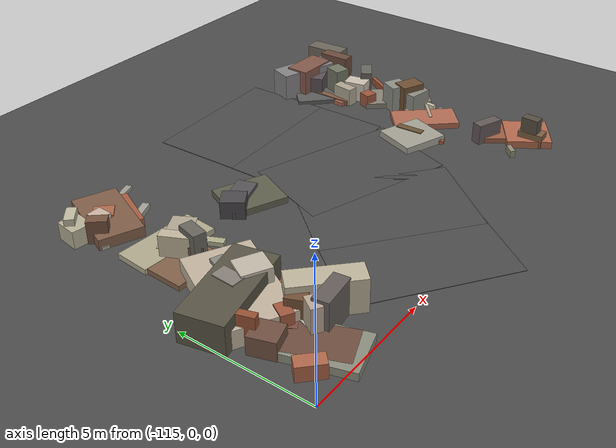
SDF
<sdf version="1.6">
 <world name="navitas_arena">
  <model name="ground_plane">
   <static>true</static>
   <link name="link">
    <collision name="collision">
     <geometry><plane><normal>0 0 1</normal><size>400 400</size></plane></geometry>
     <surface><friction><ode><mu>0.800</mu><mu2>0.800</mu2></ode></friction></surface>
    </collision>
    <visual name="visual">
     <cast_shadows>false</cast_shadows>
     <geometry><plane><normal>0 0 1</normal><size>400 400</size></plane></geometry>
     <material>
      <specular>0.04 0.04 0.04 1</specular>
      <script>
       <uri>file://media/materials/scripts/navitas_asphalt.material</uri>
       <name>Navitas/RealArenaAsphalt</name>
      </script>
     </material>
    </visual>
   </link>
  </model>
  <model name="road_kolay_1_11">
   <static>true</static>
   <pose>-107.723 1.333 0.040 0 0 0.941</pose>
   <link name="link">
    <collision name="col"><geometry><box><size>3.787 6.000 0.020</size></box></geometry></collision>
    <visual name="vis">
     <geometry><box><size>3.787 6.000 0.020</size></box></geometry>
     <material>
      <specular>0.04 0.04 0.04 1</specular>
      <script>
       <uri>file://media/materials/scripts/navitas_asphalt.material</uri>
       <name>Navitas/RealArenaAsphalt</name>
      </script>
     </material>
    </visual>
   </link>
  </model>
  <model name="road_kolay_1_12">
   <static>true</static>
   <pose>-105.942 3.667 0.040 0 0 0.897</pose>
   <link name="link">
    <collision name="col"><geometry><box><size>3.885 6.000 0.020</size></box></geometry></collision>
    <visual name="vis">
     <geometry><box><size>3.885 6.000 0.020</size></box></geometry>
     <material>
      <specular>0.04 0.04 0.04 1</specular>
      <script>
       <uri>file://media/materials/scripts/navitas_asphalt.material</uri>
       <name>Navitas/RealArenaAsphalt</name>
      </script>
     </material>
    </visual>
   </link>
  </model>
  <model name="road_kolay_1_13">
   <static>true</static>
   <pose>-104.572 6.137 0.040 0 0 1.245</pose>
   <link name="link">
    <collision name="col"><geometry><box><size>3.651 6.000 0.020</size></box></geometry></collision>
    <visual name="vis">
     <geometry><box><size>3.651 6.000 0.020</size></box></geometry>
     <material>
      <specular>0.04 0.04 0.04 1</specular>
      <script>
       <uri>file://media/materials/scripts/navitas_asphalt.material</uri>
       <name>Navitas/RealArenaAsphalt</name>
      </script>
     </material>
    </visual>
   </link>
  </model>
  <model name="road_kolay_1_14">
   <static>true</static>
   <pose>-104.165 8.910 0.040 0 0 1.593</pose>
   <link name="link">
    <collision name="col"><geometry><box><size>3.841 6.000 0.020</size></box></geometry></collision>
    <visual name="vis">
     <geometry><box><size>3.841 6.000 0.020</size></box></geometry>
     <material>
      <specular>0.04 0.04 0.04 1</specular>
      <script>
       <uri>file://media/materials/scripts/navitas_asphalt.material</uri>
       <name>Navitas/RealArenaAsphalt</name>
      </script>
     </material>
    </visual>
   </link>
  </model>
  <model name="road_kolay_1_15">
   <static>true</static>
   <pose>-104.246 11.690 0.040 0 0 1.609</pose>
   <link name="link">
    <collision name="col"><geometry><box><size>3.522 6.000 0.020</size></box></geometry></collision>
    <visual name="vis">
     <geometry><box><size>3.522 6.000 0.020</size></box></geometry>
     <material>
      <specular>0.04 0.04 0.04 1</specular>
      <script>
       <uri>file://media/materials/scripts/navitas_asphalt.material</uri>
       <name>Navitas/RealArenaAsphalt</name>
      </script>
     </material>
    </visual>
   </link>
  </model>
  <model name="deb_kolay_5">
   <static>true</static>
   <pose>-112.662 3.221 0.000 0 0 0</pose>
   <link name="link">
    <collision name="col_0">
     <pose>-0.434 0.750 0.152 0.000 0.000 2.490</pose>
     <geometry><box><size>2.248 1.536 0.305</size></box></geometry>
    </collision>
    <visual name="vis_0">
     <pose>-0.434 0.750 0.152 0.000 0.000 2.490</pose>
     <geometry><box><size>2.248 1.536 0.305</size></box></geometry>
     <material>
      <ambient>0.64 0.41 0.30 1</ambient>
      <diffuse>0.70 0.44 0.32 1</diffuse>
      <specular>0.05 0.05 0.045 1</specular>
     </material>
    </visual>
    <collision name="col_1">
     <pose>0.292 -0.635 0.513 0.000 0.000 0.399</pose>
     <geometry><box><size>1.027 0.677 1.025</size></box></geometry>
    </collision>
    <visual name="vis_1">
     <pose>0.292 -0.635 0.513 0.000 0.000 0.399</pose>
     <geometry><box><size>1.027 0.677 1.025</size></box></geometry>
     <material>
      <ambient>0.43 0.30 0.21 1</ambient>
      <diffuse>0.46 0.32 0.22 1</diffuse>
      <specular>0.05 0.05 0.045 1</specular>
     </material>
    </visual>
    <collision name="col_2">
     <pose>0.071 0.115 0.122 0.000 0.000 0.719</pose>
     <geometry><box><size>2.733 0.872 0.244</size></box></geometry>
    </collision>
    <visual name="vis_2">
     <pose>0.071 0.115 0.122 0.000 0.000 0.719</pose>
     <geometry><box><size>2.733 0.872 0.244</size></box></geometry>
     <material>
      <ambient>0.66 0.37 0.25 1</ambient>
      <diffuse>0.71 0.40 0.27 1</diffuse>
      <specular>0.05 0.05 0.045 1</specular>
     </material>
    </visual>
    <collision name="col_3">
     <pose>0.490 -0.647 0.160 0.000 0.000 1.245</pose>
     <geometry><box><size>1.934 0.988 0.321</size></box></geometry>
    </collision>
    <visual name="vis_3">
     <pose>0.490 -0.647 0.160 0.000 0.000 1.245</pose>
     <geometry><box><size>1.934 0.988 0.321</size></box></geometry>
     <material>
      <ambient>0.72 0.67 0.63 1</ambient>
      <diffuse>0.78 0.73 0.68 1</diffuse>
      <specular>0.05 0.05 0.045 1</specular>
     </material>
    </visual>
    <collision name="col_4">
     <pose>-0.360 -0.873 0.153 0.000 0.000 2.173</pose>
     <geometry><box><size>0.353 0.470 0.307</size></box></geometry>
    </collision>
    <visual name="vis_4">
     <pose>-0.360 -0.873 0.153 0.000 0.000 2.173</pose>
     <geometry><box><size>0.353 0.470 0.307</size></box></geometry>
     <material>
      <ambient>0.47 0.29 0.26 1</ambient>
      <diffuse>0.50 0.31 0.28 1</diffuse>
      <specular>0.05 0.05 0.045 1</specular>
     </material>
    </visual>
    <collision name="col_5">
     <pose>0.364 -0.889 0.141 0.000 0.000 -0.003</pose>
     <geometry><box><size>1.749 1.540 0.282</size></box></geometry>
    </collision>
    <visual name="vis_5">
     <pose>0.364 -0.889 0.141 0.000 0.000 -0.003</pose>
     <geometry><box><size>1.749 1.540 0.282</size></box></geometry>
     <material>
      <ambient>0.46 0.45 0.40 1</ambient>
      <diffuse>0.49 0.49 0.43 1</diffuse>
      <specular>0.05 0.05 0.045 1</specular>
     </material>
    </visual>
    <collision name="col_6">
     <pose>-0.389 -0.607 0.369 0.000 0.000 1.051</pose>
     <geometry><box><size>0.612 0.443 0.738</size></box></geometry>
    </collision>
    <visual name="vis_6">
     <pose>-0.389 -0.607 0.369 0.000 0.000 1.051</pose>
     <geometry><box><size>0.612 0.443 0.738</size></box></geometry>
     <material>
      <ambient>0.59 0.32 0.23 1</ambient>
      <diffuse>0.64 0.35 0.25 1</diffuse>
      <specular>0.05 0.05 0.045 1</specular>
     </material>
    </visual>
   </link>
  </model>
  <model name="deb_kolay_14">
   <static>true</static>
   <pose>-113.644 1.315 0.000 0 0 0</pose>
   <link name="link">
    <collision name="col_0">
     <pose>-0.486 -0.458 0.276 0.000 0.000 2.367</pose>
     <geometry><box><size>0.956 0.505 0.552</size></box></geometry>
    </collision>
    <visual name="vis_0">
     <pose>-0.486 -0.458 0.276 0.000 0.000 2.367</pose>
     <geometry><box><size>0.956 0.505 0.552</size></box></geometry>
     <material>
      <ambient>0.65 0.38 0.27 1</ambient>
      <diffuse>0.70 0.41 0.29 1</diffuse>
      <specular>0.05 0.05 0.045 1</specular>
     </material>
    </visual>
    <collision name="col_1">
     <pose>0.471 -0.086 0.148 0.000 0.000 1.864</pose>
     <geometry><box><size>2.839 1.710 0.295</size></box></geometry>
    </collision>
    <visual name="vis_1">
     <pose>0.471 -0.086 0.148 0.000 0.000 1.864</pose>
     <geometry><box><size>2.839 1.710 0.295</size></box></geometry>
     <material>
      <ambient>0.51 0.52 0.46 1</ambient>
      <diffuse>0.55 0.56 0.50 1</diffuse>
      <specular>0.05 0.05 0.045 1</specular>
     </material>
    </visual>
    <collision name="col_2">
     <pose>0.563 -0.191 0.083 0.000 0.000 2.445</pose>
     <geometry><box><size>0.268 0.272 0.167</size></box></geometry>
    </collision>
    <visual name="vis_2">
     <pose>0.563 -0.191 0.083 0.000 0.000 2.445</pose>
     <geometry><box><size>0.268 0.272 0.167</size></box></geometry>
     <material>
      <ambient>0.71 0.68 0.59 1</ambient>
      <diffuse>0.77 0.74 0.63 1</diffuse>
      <specular>0.05 0.05 0.045 1</specular>
     </material>
    </visual>
    <collision name="col_3">
     <pose>0.449 0.105 0.149 0.000 0.000 1.959</pose>
     <geometry><box><size>2.542 1.422 0.297</size></box></geometry>
    </collision>
    <visual name="vis_3">
     <pose>0.449 0.105 0.149 0.000 0.000 1.959</pose>
     <geometry><box><size>2.542 1.422 0.297</size></box></geometry>
     <material>
      <ambient>0.41 0.29 0.23 1</ambient>
      <diffuse>0.44 0.31 0.25 1</diffuse>
      <specular>0.05 0.05 0.045 1</specular>
     </material>
    </visual>
   </link>
  </model>
  <model name="deb_kolay_49">
   <static>true</static>
   <pose>-111.571 11.051 0.000 0 0 0</pose>
   <link name="link">
    <collision name="col_0">
     <pose>-0.028 -0.841 0.100 0.000 0.000 0.396</pose>
     <geometry><box><size>1.419 0.265 0.200</size></box></geometry>
    </collision>
    <visual name="vis_0">
     <pose>-0.028 -0.841 0.100 0.000 0.000 0.396</pose>
     <geometry><box><size>1.419 0.265 0.200</size></box></geometry>
     <material>
      <ambient>0.60 0.60 0.55 1</ambient>
      <diffuse>0.65 0.64 0.60 1</diffuse>
      <specular>0.05 0.05 0.045 1</specular>
     </material>
    </visual>
    <collision name="col_1">
     <pose>-0.834 -0.044 0.231 0.000 0.000 0.738</pose>
     <geometry><box><size>0.623 0.725 0.462</size></box></geometry>
    </collision>
    <visual name="vis_1">
     <pose>-0.834 -0.044 0.231 0.000 0.000 0.738</pose>
     <geometry><box><size>0.623 0.725 0.462</size></box></geometry>
     <material>
      <ambient>0.64 0.39 0.27 1</ambient>
      <diffuse>0.69 0.42 0.29 1</diffuse>
      <specular>0.05 0.05 0.045 1</specular>
     </material>
    </visual>
    <collision name="col_2">
     <pose>0.008 -0.478 0.174 0.000 0.000 1.141</pose>
     <geometry><box><size>1.837 0.311 0.349</size></box></geometry>
    </collision>
    <visual name="vis_2">
     <pose>0.008 -0.478 0.174 0.000 0.000 1.141</pose>
     <geometry><box><size>1.837 0.311 0.349</size></box></geometry>
     <material>
      <ambient>0.60 0.34 0.24 1</ambient>
      <diffuse>0.65 0.37 0.26 1</diffuse>
      <specular>0.05 0.05 0.045 1</specular>
     </material>
    </visual>
    <collision name="col_3">
     <pose>-0.809 -0.193 0.201 0.000 0.000 1.177</pose>
     <geometry><box><size>2.812 1.619 0.402</size></box></geometry>
    </collision>
    <visual name="vis_3">
     <pose>-0.809 -0.193 0.201 0.000 0.000 1.177</pose>
     <geometry><box><size>2.812 1.619 0.402</size></box></geometry>
     <material>
      <ambient>0.47 0.35 0.27 1</ambient>
      <diffuse>0.51 0.37 0.29 1</diffuse>
      <specular>0.05 0.05 0.045 1</specular>
     </material>
    </visual>
    <collision name="col_4">
     <pose>0.048 0.504 0.064 0.000 0.000 0.318</pose>
     <geometry><box><size>2.327 0.217 0.127</size></box></geometry>
    </collision>
    <visual name="vis_4">
     <pose>0.048 0.504 0.064 0.000 0.000 0.318</pose>
     <geometry><box><size>2.327 0.217 0.127</size></box></geometry>
     <material>
      <ambient>0.58 0.57 0.54 1</ambient>
      <diffuse>0.63 0.62 0.58 1</diffuse>
      <specular>0.05 0.05 0.045 1</specular>
     </material>
    </visual>
   </link>
  </model>
  <model name="deb_kolay_52">
   <static>true</static>
   <pose>-113.364 4.066 0.000 0 0 0</pose>
   <link name="link">
    <collision name="col_0">
     <pose>0.067 -0.331 0.076 0.000 0.000 2.278</pose>
     <geometry><box><size>1.626 0.211 0.151</size></box></geometry>
    </collision>
    <visual name="vis_0">
     <pose>0.067 -0.331 0.076 0.000 0.000 2.278</pose>
     <geometry><box><size>1.626 0.211 0.151</size></box></geometry>
     <material>
      <ambient>0.33 0.32 0.30 1</ambient>
      <diffuse>0.36 0.34 0.32 1</diffuse>
      <specular>0.05 0.05 0.045 1</specular>
     </material>
    </visual>
    <collision name="col_1">
     <pose>0.135 0.476 0.578 0.000 0.000 3.091</pose>
     <geometry><box><size>0.562 0.888 1.157</size></box></geometry>
    </collision>
    <visual name="vis_1">
     <pose>0.135 0.476 0.578 0.000 0.000 3.091</pose>
     <geometry><box><size>0.562 0.888 1.157</size></box></geometry>
     <material>
      <ambient>0.50 0.47 0.44 1</ambient>
      <diffuse>0.54 0.51 0.48 1</diffuse>
      <specular>0.05 0.05 0.045 1</specular>
     </material>
    </visual>
    <collision name="col_2">
     <pose>0.249 -0.367 0.148 0.000 0.000 1.614</pose>
     <geometry><box><size>0.475 0.465 0.296</size></box></geometry>
    </collision>
    <visual name="vis_2">
     <pose>0.249 -0.367 0.148 0.000 0.000 1.614</pose>
     <geometry><box><size>0.475 0.465 0.296</size></box></geometry>
     <material>
      <ambient>0.59 0.32 0.25 1</ambient>
      <diffuse>0.64 0.34 0.27 1</diffuse>
      <specular>0.05 0.05 0.045 1</specular>
     </material>
    </visual>
    <collision name="col_3">
     <pose>0.169 0.363 0.191 0.000 0.000 2.919</pose>
     <geometry><box><size>1.547 1.776 0.382</size></box></geometry>
    </collision>
    <visual name="vis_3">
     <pose>0.169 0.363 0.191 0.000 0.000 2.919</pose>
     <geometry><box><size>1.547 1.776 0.382</size></box></geometry>
     <material>
      <ambient>0.54 0.56 0.50 1</ambient>
      <diffuse>0.59 0.60 0.54 1</diffuse>
      <specular>0.05 0.05 0.045 1</specular>
     </material>
    </visual>
    <collision name="col_4">
     <pose>-0.338 0.218 0.191 0.000 0.000 1.287</pose>
     <geometry><box><size>2.024 1.095 0.382</size></box></geometry>
    </collision>
    <visual name="vis_4">
     <pose>-0.338 0.218 0.191 0.000 0.000 1.287</pose>
     <geometry><box><size>2.024 1.095 0.382</size></box></geometry>
     <material>
      <ambient>0.69 0.63 0.59 1</ambient>
      <diffuse>0.75 0.69 0.63 1</diffuse>
      <specular>0.05 0.05 0.045 1</specular>
     </material>
    </visual>
   </link>
  </model>
  <model name="deb_kolay_55">
   <static>true</static>
   <pose>-99.309 8.681 0.000 0 0 0</pose>
   <link name="link">
    <collision name="col_0">
     <pose>0.688 -0.802 0.111 0.000 0.000 -0.846</pose>
     <geometry><box><size>2.814 1.411 0.223</size></box></geometry>
    </collision>
    <visual name="vis_0">
     <pose>0.688 -0.802 0.111 0.000 0.000 -0.846</pose>
     <geometry><box><size>2.814 1.411 0.223</size></box></geometry>
     <material>
      <ambient>0.50 0.47 0.42 1</ambient>
      <diffuse>0.54 0.51 0.46 1</diffuse>
      <specular>0.05 0.05 0.045 1</specular>
     </material>
    </visual>
    <collision name="col_1">
     <pose>1.079 0.238 0.158 0.000 0.000 1.022</pose>
     <geometry><box><size>1.576 0.152 0.316</size></box></geometry>
    </collision>
    <visual name="vis_1">
     <pose>1.079 0.238 0.158 0.000 0.000 1.022</pose>
     <geometry><box><size>1.576 0.152 0.316</size></box></geometry>
     <material>
      <ambient>0.57 0.32 0.20 1</ambient>
      <diffuse>0.62 0.34 0.22 1</diffuse>
      <specular>0.05 0.05 0.045 1</specular>
     </material>
    </visual>
    <collision name="col_2">
     <pose>0.621 0.740 0.544 0.000 0.000 0.575</pose>
     <geometry><box><size>0.921 0.454 1.088</size></box></geometry>
    </collision>
    <visual name="vis_2">
     <pose>0.621 0.740 0.544 0.000 0.000 0.575</pose>
     <geometry><box><size>0.921 0.454 1.088</size></box></geometry>
     <material>
      <ambient>0.38 0.37 0.35 1</ambient>
      <diffuse>0.41 0.40 0.38 1</diffuse>
      <specular>0.05 0.05 0.045 1</specular>
     </material>
    </visual>
    <collision name="col_3">
     <pose>-0.425 -0.071 0.287 0.000 0.000 1.277</pose>
     <geometry><box><size>0.494 0.482 0.574</size></box></geometry>
    </collision>
    <visual name="vis_3">
     <pose>-0.425 -0.071 0.287 0.000 0.000 1.277</pose>
     <geometry><box><size>0.494 0.482 0.574</size></box></geometry>
     <material>
      <ambient>0.58 0.31 0.23 1</ambient>
      <diffuse>0.62 0.34 0.25 1</diffuse>
      <specular>0.05 0.05 0.045 1</specular>
     </material>
    </visual>
    <collision name="col_4">
     <pose>0.138 -1.102 0.545 0.000 0.000 1.126</pose>
     <geometry><box><size>0.762 0.796 1.091</size></box></geometry>
    </collision>
    <visual name="vis_4">
     <pose>0.138 -1.102 0.545 0.000 0.000 1.126</pose>
     <geometry><box><size>0.762 0.796 1.091</size></box></geometry>
     <material>
      <ambient>0.52 0.53 0.49 1</ambient>
      <diffuse>0.56 0.57 0.53 1</diffuse>
      <specular>0.05 0.05 0.045 1</specular>
     </material>
    </visual>
   </link>
  </model>
  <model name="deb_kolay_86">
   <static>true</static>
   <pose>-112.189 7.218 0.000 0 0 0</pose>
   <link name="link">
    <collision name="col_0">
     <pose>0.074 -0.337 0.341 0.000 0.000 2.089</pose>
     <geometry><box><size>0.490 0.563 0.683</size></box></geometry>
    </collision>
    <visual name="vis_0">
     <pose>0.074 -0.337 0.341 0.000 0.000 2.089</pose>
     <geometry><box><size>0.490 0.563 0.683</size></box></geometry>
     <material>
      <ambient>0.46 0.33 0.27 1</ambient>
      <diffuse>0.49 0.36 0.29 1</diffuse>
      <specular>0.05 0.05 0.045 1</specular>
     </material>
    </visual>
    <collision name="col_1">
     <pose>0.736 0.543 0.085 0.000 0.000 2.004</pose>
     <geometry><box><size>2.206 0.288 0.170</size></box></geometry>
    </collision>
    <visual name="vis_1">
     <pose>0.736 0.543 0.085 0.000 0.000 2.004</pose>
     <geometry><box><size>2.206 0.288 0.170</size></box></geometry>
     <material>
      <ambient>0.65 0.64 0.52 1</ambient>
      <diffuse>0.70 0.69 0.56 1</diffuse>
      <specular>0.05 0.05 0.045 1</specular>
     </material>
    </visual>
    <collision name="col_2">
     <pose>-0.414 -0.193 0.101 0.000 0.000 3.106</pose>
     <geometry><box><size>2.032 1.585 0.202</size></box></geometry>
    </collision>
    <visual name="vis_2">
     <pose>-0.414 -0.193 0.101 0.000 0.000 3.106</pose>
     <geometry><box><size>2.032 1.585 0.202</size></box></geometry>
     <material>
      <ambient>0.48 0.36 0.27 1</ambient>
      <diffuse>0.52 0.39 0.29 1</diffuse>
      <specular>0.05 0.05 0.045 1</specular>
     </material>
    </visual>
    <collision name="col_3">
     <pose>0.046 1.043 0.105 0.000 0.000 3.069</pose>
     <geometry><box><size>2.995 1.334 0.210</size></box></geometry>
    </collision>
    <visual name="vis_3">
     <pose>0.046 1.043 0.105 0.000 0.000 3.069</pose>
     <geometry><box><size>2.995 1.334 0.210</size></box></geometry>
     <material>
      <ambient>0.65 0.62 0.52 1</ambient>
      <diffuse>0.70 0.67 0.56 1</diffuse>
      <specular>0.05 0.05 0.045 1</specular>
     </material>
    </visual>
    <collision name="col_4">
     <pose>0.581 1.083 0.114 0.000 0.000 3.634</pose>
     <geometry><box><size>1.911 0.885 0.228</size></box></geometry>
    </collision>
    <visual name="vis_4">
     <pose>0.581 1.083 0.114 0.000 0.000 3.634</pose>
     <geometry><box><size>1.911 0.885 0.228</size></box></geometry>
     <material>
      <ambient>0.65 0.61 0.54 1</ambient>
      <diffuse>0.70 0.66 0.58 1</diffuse>
      <specular>0.05 0.05 0.045 1</specular>
     </material>
    </visual>
    <collision name="col_5">
     <pose>-0.280 0.215 0.507 0.000 0.000 2.025</pose>
     <geometry><box><size>1.139 0.409 1.014</size></box></geometry>
    </collision>
    <visual name="vis_5">
     <pose>-0.280 0.215 0.507 0.000 0.000 2.025</pose>
     <geometry><box><size>1.139 0.409 1.014</size></box></geometry>
     <material>
      <ambient>0.72 0.67 0.58 1</ambient>
      <diffuse>0.77 0.72 0.62 1</diffuse>
      <specular>0.05 0.05 0.045 1</specular>
     </material>
    </visual>
    <collision name="col_6">
     <pose>0.022 -0.221 0.617 0.000 0.000 2.895</pose>
     <geometry><box><size>0.483 0.863 1.234</size></box></geometry>
    </collision>
    <visual name="vis_6">
     <pose>0.022 -0.221 0.617 0.000 0.000 2.895</pose>
     <geometry><box><size>0.483 0.863 1.234</size></box></geometry>
     <material>
      <ambient>0.38 0.37 0.34 1</ambient>
      <diffuse>0.41 0.40 0.37 1</diffuse>
      <specular>0.05 0.05 0.045 1</specular>
     </material>
    </visual>
   </link>
  </model>
  <model name="deb_kolay_95">
   <static>true</static>
   <pose>-99.735 10.067 0.000 0 0 0</pose>
   <link name="link">
    <collision name="col_0">
     <pose>0.024 -0.201 0.078 0.000 0.000 2.313</pose>
     <geometry><box><size>0.293 0.402 0.156</size></box></geometry>
    </collision>
    <visual name="vis_0">
     <pose>0.024 -0.201 0.078 0.000 0.000 2.313</pose>
     <geometry><box><size>0.293 0.402 0.156</size></box></geometry>
     <material>
      <ambient>0.37 0.36 0.36 1</ambient>
      <diffuse>0.40 0.39 0.38 1</diffuse>
      <specular>0.05 0.05 0.045 1</specular>
     </material>
    </visual>
    <collision name="col_1">
     <pose>0.326 -0.653 0.411 0.000 0.000 3.345</pose>
     <geometry><box><size>0.659 0.898 0.821</size></box></geometry>
    </collision>
    <visual name="vis_1">
     <pose>0.326 -0.653 0.411 0.000 0.000 3.345</pose>
     <geometry><box><size>0.659 0.898 0.821</size></box></geometry>
     <material>
      <ambient>0.74 0.70 0.65 1</ambient>
      <diffuse>0.80 0.76 0.70 1</diffuse>
      <specular>0.05 0.05 0.045 1</specular>
     </material>
    </visual>
    <collision name="col_2">
     <pose>-0.494 0.103 0.108 0.000 0.000 1.588</pose>
     <geometry><box><size>1.750 0.289 0.216</size></box></geometry>
    </collision>
    <visual name="vis_2">
     <pose>-0.494 0.103 0.108 0.000 0.000 1.588</pose>
     <geometry><box><size>1.750 0.289 0.216</size></box></geometry>
     <material>
      <ambient>0.48 0.34 0.25 1</ambient>
      <diffuse>0.52 0.36 0.27 1</diffuse>
      <specular>0.05 0.05 0.045 1</specular>
     </material>
    </visual>
    <collision name="col_3">
     <pose>-0.481 0.453 0.090 0.000 0.000 2.355</pose>
     <geometry><box><size>2.487 1.194 0.179</size></box></geometry>
    </collision>
    <visual name="vis_3">
     <pose>-0.481 0.453 0.090 0.000 0.000 2.355</pose>
     <geometry><box><size>2.487 1.194 0.179</size></box></geometry>
     <material>
      <ambient>0.34 0.34 0.33 1</ambient>
      <diffuse>0.37 0.37 0.36 1</diffuse>
      <specular>0.05 0.05 0.045 1</specular>
     </material>
    </visual>
    <collision name="col_4">
     <pose>0.227 0.308 0.587 0.000 0.000 1.269</pose>
     <geometry><box><size>0.725 0.629 1.174</size></box></geometry>
    </collision>
    <visual name="vis_4">
     <pose>0.227 0.308 0.587 0.000 0.000 1.269</pose>
     <geometry><box><size>0.725 0.629 1.174</size></box></geometry>
     <material>
      <ambient>0.42 0.43 0.37 1</ambient>
      <diffuse>0.45 0.47 0.40 1</diffuse>
      <specular>0.05 0.05 0.045 1</specular>
     </material>
    </visual>
    <collision name="col_5">
     <pose>-0.555 -0.448 0.085 0.000 0.000 1.543</pose>
     <geometry><box><size>0.425 0.446 0.170</size></box></geometry>
    </collision>
    <visual name="vis_5">
     <pose>-0.555 -0.448 0.085 0.000 0.000 1.543</pose>
     <geometry><box><size>0.425 0.446 0.170</size></box></geometry>
     <material>
      <ambient>0.62 0.37 0.30 1</ambient>
      <diffuse>0.67 0.40 0.32 1</diffuse>
      <specular>0.05 0.05 0.045 1</specular>
     </material>
    </visual>
    <collision name="col_6">
     <pose>-0.268 -0.449 0.364 0.000 0.000 1.431</pose>
     <geometry><box><size>0.887 0.431 0.728</size></box></geometry>
    </collision>
    <visual name="vis_6">
     <pose>-0.268 -0.449 0.364 0.000 0.000 1.431</pose>
     <geometry><box><size>0.887 0.431 0.728</size></box></geometry>
     <material>
      <ambient>0.64 0.61 0.54 1</ambient>
      <diffuse>0.69 0.66 0.58 1</diffuse>
      <specular>0.05 0.05 0.045 1</specular>
     </material>
    </visual>
   </link>
  </model>
  <model name="deb_kolay_100">
   <static>true</static>
   <pose>-112.863 5.244 0.000 0 0 0</pose>
   <link name="link">
    <collision name="col_0">
     <pose>0.041 -0.319 0.409 0.000 0.000 3.211</pose>
     <geometry><box><size>0.705 0.421 0.818</size></box></geometry>
    </collision>
    <visual name="vis_0">
     <pose>0.041 -0.319 0.409 0.000 0.000 3.211</pose>
     <geometry><box><size>0.705 0.421 0.818</size></box></geometry>
     <material>
      <ambient>0.61 0.35 0.23 1</ambient>
      <diffuse>0.66 0.38 0.25 1</diffuse>
      <specular>0.05 0.05 0.045 1</specular>
     </material>
    </visual>
    <collision name="col_1">
     <pose>0.421 -0.407 0.364 0.000 0.000 3.268</pose>
     <geometry><box><size>0.660 0.861 0.728</size></box></geometry>
    </collision>
    <visual name="vis_1">
     <pose>0.421 -0.407 0.364 0.000 0.000 3.268</pose>
     <geometry><box><size>0.660 0.861 0.728</size></box></geometry>
     <material>
      <ambient>0.40 0.38 0.34 1</ambient>
      <diffuse>0.43 0.41 0.37 1</diffuse>
      <specular>0.05 0.05 0.045 1</specular>
     </material>
    </visual>
    <collision name="col_2">
     <pose>0.364 0.388 0.099 0.000 0.000 3.079</pose>
     <geometry><box><size>0.185 0.262 0.197</size></box></geometry>
    </collision>
    <visual name="vis_2">
     <pose>0.364 0.388 0.099 0.000 0.000 3.079</pose>
     <geometry><box><size>0.185 0.262 0.197</size></box></geometry>
     <material>
      <ambient>0.53 0.53 0.47 1</ambient>
      <diffuse>0.58 0.57 0.51 1</diffuse>
      <specular>0.05 0.05 0.045 1</specular>
     </material>
    </visual>
    <collision name="col_3">
     <pose>-0.430 -0.195 0.086 0.000 0.000 3.356</pose>
     <geometry><box><size>0.461 0.247 0.171</size></box></geometry>
    </collision>
    <visual name="vis_3">
     <pose>-0.430 -0.195 0.086 0.000 0.000 3.356</pose>
     <geometry><box><size>0.461 0.247 0.171</size></box></geometry>
     <material>
      <ambient>0.48 0.33 0.26 1</ambient>
      <diffuse>0.51 0.35 0.28 1</diffuse>
      <specular>0.05 0.05 0.045 1</specular>
     </material>
    </visual>
    <collision name="col_4">
     <pose>0.468 0.412 0.093 0.000 0.000 3.351</pose>
     <geometry><box><size>0.468 0.224 0.187</size></box></geometry>
    </collision>
    <visual name="vis_4">
     <pose>0.468 0.412 0.093 0.000 0.000 3.351</pose>
     <geometry><box><size>0.468 0.224 0.187</size></box></geometry>
     <material>
      <ambient>0.76 0.72 0.63 1</ambient>
      <diffuse>0.82 0.78 0.68 1</diffuse>
      <specular>0.05 0.05 0.045 1</specular>
     </material>
    </visual>
    <collision name="col_5">
     <pose>0.339 0.276 0.406 0.000 0.000 2.757</pose>
     <geometry><box><size>0.457 0.620 0.811</size></box></geometry>
    </collision>
    <visual name="vis_5">
     <pose>0.339 0.276 0.406 0.000 0.000 2.757</pose>
     <geometry><box><size>0.457 0.620 0.811</size></box></geometry>
     <material>
      <ambient>0.51 0.50 0.46 1</ambient>
      <diffuse>0.55 0.54 0.50 1</diffuse>
      <specular>0.05 0.05 0.045 1</specular>
     </material>
    </visual>
    <collision name="col_6">
     <pose>0.551 -0.020 0.167 0.000 0.000 1.374</pose>
     <geometry><box><size>0.335 0.308 0.335</size></box></geometry>
    </collision>
    <visual name="vis_6">
     <pose>0.551 -0.020 0.167 0.000 0.000 1.374</pose>
     <geometry><box><size>0.335 0.308 0.335</size></box></geometry>
     <material>
      <ambient>0.43 0.27 0.22 1</ambient>
      <diffuse>0.46 0.29 0.24 1</diffuse>
      <specular>0.05 0.05 0.045 1</specular>
     </material>
    </visual>
   </link>
  </model>
  <model name="deb_kolay_124">
   <static>true</static>
   <pose>-109.148 8.214 0.000 0 0 0</pose>
   <link name="link">
    <collision name="col_0">
     <pose>0.635 -0.075 0.204 0.000 0.000 0.329</pose>
     <geometry><box><size>1.115 0.764 0.408</size></box></geometry>
    </collision>
    <visual name="vis_0">
     <pose>0.635 -0.075 0.204 0.000 0.000 0.329</pose>
     <geometry><box><size>1.115 0.764 0.408</size></box></geometry>
     <material>
      <ambient>0.31 0.31 0.32 1</ambient>
      <diffuse>0.34 0.33 0.34 1</diffuse>
      <specular>0.05 0.05 0.045 1</specular>
     </material>
    </visual>
    <collision name="col_1">
     <pose>-0.240 -0.463 0.346 0.000 0.000 0.595</pose>
     <geometry><box><size>0.753 0.889 0.692</size></box></geometry>
    </collision>
    <visual name="vis_1">
     <pose>-0.240 -0.463 0.346 0.000 0.000 0.595</pose>
     <geometry><box><size>0.753 0.889 0.692</size></box></geometry>
     <material>
      <ambient>0.27 0.27 0.28 1</ambient>
      <diffuse>0.30 0.29 0.30 1</diffuse>
      <specular>0.05 0.05 0.045 1</specular>
     </material>
    </visual>
    <collision name="col_2">
     <pose>0.760 -0.320 0.127 0.000 0.000 -0.413</pose>
     <geometry><box><size>2.153 1.775 0.254</size></box></geometry>
    </collision>
    <visual name="vis_2">
     <pose>0.760 -0.320 0.127 0.000 0.000 -0.413</pose>
     <geometry><box><size>2.153 1.775 0.254</size></box></geometry>
     <material>
      <ambient>0.35 0.35 0.29 1</ambient>
      <diffuse>0.38 0.38 0.31 1</diffuse>
      <specular>0.05 0.05 0.045 1</specular>
     </material>
    </visual>
    <collision name="col_3">
     <pose>-0.113 -0.146 0.122 0.000 0.000 -0.170</pose>
     <geometry><box><size>0.370 0.366 0.244</size></box></geometry>
    </collision>
    <visual name="vis_3">
     <pose>-0.113 -0.146 0.122 0.000 0.000 -0.170</pose>
     <geometry><box><size>0.370 0.366 0.244</size></box></geometry>
     <material>
      <ambient>0.44 0.33 0.28 1</ambient>
      <diffuse>0.48 0.36 0.30 1</diffuse>
      <specular>0.05 0.05 0.045 1</specular>
     </material>
    </visual>
   </link>
  </model>
  <model name="deb_kolay_128">
   <static>true</static>
   <pose>-113.274 10.947 0.000 0 0 0</pose>
   <link name="link">
    <collision name="col_0">
     <pose>0.032 -0.631 0.439 0.000 0.000 2.292</pose>
     <geometry><box><size>0.719 0.403 0.878</size></box></geometry>
    </collision>
    <visual name="vis_0">
     <pose>0.032 -0.631 0.439 0.000 0.000 2.292</pose>
     <geometry><box><size>0.719 0.403 0.878</size></box></geometry>
     <material>
      <ambient>0.43 0.30 0.23 1</ambient>
      <diffuse>0.47 0.33 0.25 1</diffuse>
      <specular>0.05 0.05 0.045 1</specular>
     </material>
    </visual>
    <collision name="col_1">
     <pose>-0.332 0.246 0.463 0.000 0.000 0.727</pose>
     <geometry><box><size>0.757 0.353 0.926</size></box></geometry>
    </collision>
    <visual name="vis_1">
     <pose>-0.332 0.246 0.463 0.000 0.000 0.727</pose>
     <geometry><box><size>0.757 0.353 0.926</size></box></geometry>
     <material>
      <ambient>0.71 0.69 0.59 1</ambient>
      <diffuse>0.76 0.74 0.64 1</diffuse>
      <specular>0.05 0.05 0.045 1</specular>
     </material>
    </visual>
    <collision name="col_2">
     <pose>-0.381 0.005 0.336 0.000 0.000 1.435</pose>
     <geometry><box><size>0.865 0.769 0.672</size></box></geometry>
    </collision>
    <visual name="vis_2">
     <pose>-0.381 0.005 0.336 0.000 0.000 1.435</pose>
     <geometry><box><size>0.865 0.769 0.672</size></box></geometry>
     <material>
      <ambient>0.68 0.65 0.55 1</ambient>
      <diffuse>0.73 0.70 0.60 1</diffuse>
      <specular>0.05 0.05 0.045 1</specular>
     </material>
    </visual>
    <collision name="col_3">
     <pose>0.107 -0.084 0.060 0.000 0.000 1.303</pose>
     <geometry><box><size>2.291 0.281 0.121</size></box></geometry>
    </collision>
    <visual name="vis_3">
     <pose>0.107 -0.084 0.060 0.000 0.000 1.303</pose>
     <geometry><box><size>2.291 0.281 0.121</size></box></geometry>
     <material>
      <ambient>0.60 0.61 0.54 1</ambient>
      <diffuse>0.65 0.66 0.58 1</diffuse>
      <specular>0.05 0.05 0.045 1</specular>
     </material>
    </visual>
    <collision name="col_4">
     <pose>0.226 0.755 0.111 0.000 0.000 0.937</pose>
     <geometry><box><size>1.261 0.296 0.221</size></box></geometry>
    </collision>
    <visual name="vis_4">
     <pose>0.226 0.755 0.111 0.000 0.000 0.937</pose>
     <geometry><box><size>1.261 0.296 0.221</size></box></geometry>
     <material>
      <ambient>0.60 0.35 0.23 1</ambient>
      <diffuse>0.65 0.38 0.25 1</diffuse>
      <specular>0.05 0.05 0.045 1</specular>
     </material>
    </visual>
    <collision name="col_5">
     <pose>0.524 -0.123 0.299 0.000 0.000 1.542</pose>
     <geometry><box><size>0.581 0.542 0.599</size></box></geometry>
    </collision>
    <visual name="vis_5">
     <pose>0.524 -0.123 0.299 0.000 0.000 1.542</pose>
     <geometry><box><size>0.581 0.542 0.599</size></box></geometry>
     <material>
      <ambient>0.75 0.66 0.61 1</ambient>
      <diffuse>0.81 0.72 0.66 1</diffuse>
      <specular>0.05 0.05 0.045 1</specular>
     </material>
    </visual>
   </link>
  </model>
  <model name="deb_kolay_153">
   <static>true</static>
   <pose>-100.160 5.295 0.000 0 0 0</pose>
   <link name="link">
    <collision name="col_0">
     <pose>-1.088 0.190 0.157 0.000 0.000 2.798</pose>
     <geometry><box><size>1.887 1.739 0.313</size></box></geometry>
    </collision>
    <visual name="vis_0">
     <pose>-1.088 0.190 0.157 0.000 0.000 2.798</pose>
     <geometry><box><size>1.887 1.739 0.313</size></box></geometry>
     <material>
      <ambient>0.60 0.59 0.54 1</ambient>
      <diffuse>0.65 0.64 0.59 1</diffuse>
      <specular>0.05 0.05 0.045 1</specular>
     </material>
    </visual>
    <collision name="col_1">
     <pose>-0.588 -0.814 0.071 0.000 0.000 1.931</pose>
     <geometry><box><size>0.325 0.353 0.142</size></box></geometry>
    </collision>
    <visual name="vis_1">
     <pose>-0.588 -0.814 0.071 0.000 0.000 1.931</pose>
     <geometry><box><size>0.325 0.353 0.142</size></box></geometry>
     <material>
      <ambient>0.60 0.34 0.23 1</ambient>
      <diffuse>0.65 0.36 0.25 1</diffuse>
      <specular>0.05 0.05 0.045 1</specular>
     </material>
    </visual>
    <collision name="col_2">
     <pose>-0.668 -0.756 0.102 0.000 0.000 2.254</pose>
     <geometry><box><size>0.222 0.230 0.204</size></box></geometry>
    </collision>
    <visual name="vis_2">
     <pose>-0.668 -0.756 0.102 0.000 0.000 2.254</pose>
     <geometry><box><size>0.222 0.230 0.204</size></box></geometry>
     <material>
      <ambient>0.54 0.49 0.45 1</ambient>
      <diffuse>0.58 0.53 0.48 1</diffuse>
      <specular>0.05 0.05 0.045 1</specular>
     </material>
    </visual>
    <collision name="col_3">
     <pose>-0.856 0.427 0.176 0.000 0.000 1.624</pose>
     <geometry><box><size>1.106 0.296 0.352</size></box></geometry>
    </collision>
    <visual name="vis_3">
     <pose>-0.856 0.427 0.176 0.000 0.000 1.624</pose>
     <geometry><box><size>1.106 0.296 0.352</size></box></geometry>
     <material>
      <ambient>0.39 0.30 0.20 1</ambient>
      <diffuse>0.43 0.33 0.21 1</diffuse>
      <specular>0.05 0.05 0.045 1</specular>
     </material>
    </visual>
    <collision name="col_4">
     <pose>0.024 0.827 0.108 0.000 0.000 0.762</pose>
     <geometry><box><size>2.014 0.268 0.216</size></box></geometry>
    </collision>
    <visual name="vis_4">
     <pose>0.024 0.827 0.108 0.000 0.000 0.762</pose>
     <geometry><box><size>2.014 0.268 0.216</size></box></geometry>
     <material>
      <ambient>0.71 0.69 0.59 1</ambient>
      <diffuse>0.77 0.74 0.63 1</diffuse>
      <specular>0.05 0.05 0.045 1</specular>
     </material>
    </visual>
   </link>
  </model>
  <model name="deb_kolay_179">
   <static>true</static>
   <pose>-99.570 2.004 0.000 0 0 0</pose>
   <link name="link">
    <collision name="col_0">
     <pose>0.853 -0.417 0.564 0.000 0.000 1.527</pose>
     <geometry><box><size>0.677 0.399 1.129</size></box></geometry>
    </collision>
    <visual name="vis_0">
     <pose>0.853 -0.417 0.564 0.000 0.000 1.527</pose>
     <geometry><box><size>0.677 0.399 1.129</size></box></geometry>
     <material>
      <ambient>0.31 0.29 0.24 1</ambient>
      <diffuse>0.34 0.31 0.26 1</diffuse>
      <specular>0.05 0.05 0.045 1</specular>
     </material>
    </visual>
    <collision name="col_1">
     <pose>0.954 0.525 0.110 0.000 0.000 2.209</pose>
     <geometry><box><size>2.171 1.327 0.220</size></box></geometry>
    </collision>
    <visual name="vis_1">
     <pose>0.954 0.525 0.110 0.000 0.000 2.209</pose>
     <geometry><box><size>2.171 1.327 0.220</size></box></geometry>
     <material>
      <ambient>0.57 0.35 0.25 1</ambient>
      <diffuse>0.62 0.38 0.27 1</diffuse>
      <specular>0.05 0.05 0.045 1</specular>
     </material>
    </visual>
    <collision name="col_2">
     <pose>-0.411 -0.216 0.140 0.000 0.000 0.792</pose>
     <geometry><box><size>0.500 0.192 0.280</size></box></geometry>
    </collision>
    <visual name="vis_2">
     <pose>-0.411 -0.216 0.140 0.000 0.000 0.792</pose>
     <geometry><box><size>0.500 0.192 0.280</size></box></geometry>
     <material>
      <ambient>0.54 0.52 0.44 1</ambient>
      <diffuse>0.58 0.56 0.47 1</diffuse>
      <specular>0.05 0.05 0.045 1</specular>
     </material>
    </visual>
    <collision name="col_3">
     <pose>1.167 -0.130 0.146 0.000 0.000 2.151</pose>
     <geometry><box><size>1.741 1.730 0.292</size></box></geometry>
    </collision>
    <visual name="vis_3">
     <pose>1.167 -0.130 0.146 0.000 0.000 2.151</pose>
     <geometry><box><size>1.741 1.730 0.292</size></box></geometry>
     <material>
      <ambient>0.66 0.39 0.28 1</ambient>
      <diffuse>0.71 0.42 0.31 1</diffuse>
      <specular>0.05 0.05 0.045 1</specular>
     </material>
    </visual>
    <collision name="col_4">
     <pose>0.890 -0.483 0.270 0.000 0.000 1.619</pose>
     <geometry><box><size>0.981 0.548 0.540</size></box></geometry>
    </collision>
    <visual name="vis_4">
     <pose>0.890 -0.483 0.270 0.000 0.000 1.619</pose>
     <geometry><box><size>0.981 0.548 0.540</size></box></geometry>
     <material>
      <ambient>0.46 0.35 0.24 1</ambient>
      <diffuse>0.49 0.37 0.26 1</diffuse>
      <specular>0.05 0.05 0.045 1</specular>
     </material>
    </visual>
    <collision name="col_5">
     <pose>0.113 1.120 0.410 0.000 0.000 2.765</pose>
     <geometry><box><size>1.087 0.429 0.820</size></box></geometry>
    </collision>
    <visual name="vis_5">
     <pose>0.113 1.120 0.410 0.000 0.000 2.765</pose>
     <geometry><box><size>1.087 0.429 0.820</size></box></geometry>
     <material>
      <ambient>0.37 0.32 0.33 1</ambient>
      <diffuse>0.40 0.35 0.35 1</diffuse>
      <specular>0.05 0.05 0.045 1</specular>
     </material>
    </visual>
   </link>
  </model>
  <model name="deb_kolay_180">
   <static>true</static>
   <pose>-98.960 6.268 0.000 0 0 0</pose>
   <link name="link">
    <collision name="col_0">
     <pose>-0.109 0.710 0.157 0.000 0.000 2.602</pose>
     <geometry><box><size>0.301 0.339 0.313</size></box></geometry>
    </collision>
    <visual name="vis_0">
     <pose>-0.109 0.710 0.157 0.000 0.000 2.602</pose>
     <geometry><box><size>0.301 0.339 0.313</size></box></geometry>
     <material>
      <ambient>0.52 0.51 0.46 1</ambient>
      <diffuse>0.57 0.55 0.50 1</diffuse>
      <specular>0.05 0.05 0.045 1</specular>
     </material>
    </visual>
    <collision name="col_1">
     <pose>0.062 0.826 0.570 0.000 0.000 1.158</pose>
     <geometry><box><size>0.695 0.982 1.139</size></box></geometry>
    </collision>
    <visual name="vis_1">
     <pose>0.062 0.826 0.570 0.000 0.000 1.158</pose>
     <geometry><box><size>0.695 0.982 1.139</size></box></geometry>
     <material>
      <ambient>0.41 0.30 0.19 1</ambient>
      <diffuse>0.44 0.32 0.21 1</diffuse>
      <specular>0.05 0.05 0.045 1</specular>
     </material>
    </visual>
    <collision name="col_2">
     <pose>-0.699 -0.407 0.123 0.000 0.000 2.299</pose>
     <geometry><box><size>2.636 1.316 0.245</size></box></geometry>
    </collision>
    <visual name="vis_2">
     <pose>-0.699 -0.407 0.123 0.000 0.000 2.299</pose>
     <geometry><box><size>2.636 1.316 0.245</size></box></geometry>
     <material>
      <ambient>0.65 0.40 0.31 1</ambient>
      <diffuse>0.70 0.43 0.33 1</diffuse>
      <specular>0.05 0.05 0.045 1</specular>
     </material>
    </visual>
    <collision name="col_3">
     <pose>0.050 0.545 0.439 0.000 0.000 2.971</pose>
     <geometry><box><size>0.986 0.731 0.878</size></box></geometry>
    </collision>
    <visual name="vis_3">
     <pose>0.050 0.545 0.439 0.000 0.000 2.971</pose>
     <geometry><box><size>0.986 0.731 0.878</size></box></geometry>
     <material>
      <ambient>0.51 0.50 0.49 1</ambient>
      <diffuse>0.55 0.55 0.52 1</diffuse>
      <specular>0.05 0.05 0.045 1</specular>
     </material>
    </visual>
    <collision name="col_4">
     <pose>0.474 -0.579 0.081 0.000 0.000 1.355</pose>
     <geometry><box><size>0.336 0.203 0.162</size></box></geometry>
    </collision>
    <visual name="vis_4">
     <pose>0.474 -0.579 0.081 0.000 0.000 1.355</pose>
     <geometry><box><size>0.336 0.203 0.162</size></box></geometry>
     <material>
      <ambient>0.56 0.53 0.47 1</ambient>
      <diffuse>0.61 0.58 0.51 1</diffuse>
      <specular>0.05 0.05 0.045 1</specular>
     </material>
    </visual>
    <collision name="col_5">
     <pose>0.009 -0.153 0.134 0.000 0.000 3.837</pose>
     <geometry><box><size>1.460 0.123 0.268</size></box></geometry>
    </collision>
    <visual name="vis_5">
     <pose>0.009 -0.153 0.134 0.000 0.000 3.837</pose>
     <geometry><box><size>1.460 0.123 0.268</size></box></geometry>
     <material>
      <ambient>0.67 0.61 0.54 1</ambient>
      <diffuse>0.72 0.66 0.58 1</diffuse>
      <specular>0.05 0.05 0.045 1</specular>
     </material>
    </visual>
    <collision name="col_6">
     <pose>0.454 0.450 0.142 0.000 0.000 1.453</pose>
     <geometry><box><size>1.438 0.166 0.283</size></box></geometry>
    </collision>
    <visual name="vis_6">
     <pose>0.454 0.450 0.142 0.000 0.000 1.453</pose>
     <geometry><box><size>1.438 0.166 0.283</size></box></geometry>
     <material>
      <ambient>0.77 0.73 0.64 1</ambient>
      <diffuse>0.83 0.79 0.69 1</diffuse>
      <specular>0.05 0.05 0.045 1</specular>
     </material>
    </visual>
   </link>
  </model>
  <model name="chic_kolay_2">
   <static>true</static>
   <pose>-112.755 2.848 0.000 0 0 0</pose>
   <link name="link">
    <collision name="col_0">
     <pose>0.349 1.455 0.597 0.000 0.000 -0.778</pose>
     <geometry><box><size>0.324 0.360 1.194</size></box></geometry>
    </collision>
    <visual name="vis_0">
     <pose>0.349 1.455 0.597 0.000 0.000 -0.778</pose>
     <geometry><box><size>0.324 0.360 1.194</size></box></geometry>
     <material>
      <ambient>0.67 0.65 0.55 1</ambient>
      <diffuse>0.72 0.71 0.59 1</diffuse>
      <specular>0.05 0.05 0.045 1</specular>
     </material>
    </visual>
    <collision name="col_1">
     <pose>-0.002 -1.084 0.606 0.000 0.000 -0.588</pose>
     <geometry><box><size>0.406 0.653 1.212</size></box></geometry>
    </collision>
    <visual name="vis_1">
     <pose>-0.002 -1.084 0.606 0.000 0.000 -0.588</pose>
     <geometry><box><size>0.406 0.653 1.212</size></box></geometry>
     <material>
      <ambient>0.68 0.62 0.54 1</ambient>
      <diffuse>0.74 0.66 0.58 1</diffuse>
      <specular>0.05 0.05 0.045 1</specular>
     </material>
    </visual>
    <collision name="col_2">
     <pose>-1.274 -0.383 0.345 0.000 0.000 0.315</pose>
     <geometry><box><size>0.865 0.959 0.690</size></box></geometry>
    </collision>
    <visual name="vis_2">
     <pose>-1.274 -0.383 0.345 0.000 0.000 0.315</pose>
     <geometry><box><size>0.865 0.959 0.690</size></box></geometry>
     <material>
      <ambient>0.42 0.29 0.24 1</ambient>
      <diffuse>0.45 0.32 0.26 1</diffuse>
      <specular>0.05 0.05 0.045 1</specular>
     </material>
    </visual>
    <collision name="col_3">
     <pose>0.686 -1.214 0.664 0.000 0.000 0.133</pose>
     <geometry><box><size>1.350 0.591 1.329</size></box></geometry>
    </collision>
    <visual name="vis_3">
     <pose>0.686 -1.214 0.664 0.000 0.000 0.133</pose>
     <geometry><box><size>1.350 0.591 1.329</size></box></geometry>
     <material>
      <ambient>0.37 0.34 0.34 1</ambient>
      <diffuse>0.40 0.37 0.36 1</diffuse>
      <specular>0.05 0.05 0.045 1</specular>
     </material>
    </visual>
    <collision name="col_4">
     <pose>0.672 1.454 0.482 0.000 0.000 -0.732</pose>
     <geometry><box><size>0.555 0.465 0.965</size></box></geometry>
    </collision>
    <visual name="vis_4">
     <pose>0.672 1.454 0.482 0.000 0.000 -0.732</pose>
     <geometry><box><size>0.555 0.465 0.965</size></box></geometry>
     <material>
      <ambient>0.39 0.37 0.33 1</ambient>
      <diffuse>0.42 0.40 0.35 1</diffuse>
      <specular>0.05 0.05 0.045 1</specular>
     </material>
    </visual>
    <collision name="col_5">
     <pose>1.138 -0.675 0.629 0.000 0.000 -0.772</pose>
     <geometry><box><size>2.524 0.862 1.258</size></box></geometry>
    </collision>
    <visual name="vis_5">
     <pose>1.138 -0.675 0.629 0.000 0.000 -0.772</pose>
     <geometry><box><size>2.524 0.862 1.258</size></box></geometry>
     <material>
      <ambient>0.70 0.66 0.57 1</ambient>
      <diffuse>0.76 0.72 0.62 1</diffuse>
      <specular>0.05 0.05 0.045 1</specular>
     </material>
    </visual>
    <collision name="col_6">
     <pose>0.305 1.441 0.613 0.000 0.000 1.087</pose>
     <geometry><box><size>0.898 1.065 1.226</size></box></geometry>
    </collision>
    <visual name="vis_6">
     <pose>0.305 1.441 0.613 0.000 0.000 1.087</pose>
     <geometry><box><size>0.898 1.065 1.226</size></box></geometry>
     <material>
      <ambient>0.71 0.68 0.62 1</ambient>
      <diffuse>0.77 0.73 0.67 1</diffuse>
      <specular>0.05 0.05 0.045 1</specular>
     </material>
    </visual>
    <collision name="col_7">
     <pose>-0.166 1.645 0.340 0.000 0.000 1.081</pose>
     <geometry><box><size>3.885 2.384 0.680</size></box></geometry>
    </collision>
    <visual name="vis_7">
     <pose>-0.166 1.645 0.340 0.000 0.000 1.081</pose>
     <geometry><box><size>3.885 2.384 0.680</size></box></geometry>
     <material>
      <ambient>0.72 0.66 0.58 1</ambient>
      <diffuse>0.77 0.71 0.63 1</diffuse>
      <specular>0.05 0.05 0.045 1</specular>
     </material>
    </visual>
    <collision name="col_8">
     <pose>-0.677 1.488 0.560 0.000 0.000 0.228</pose>
     <geometry><box><size>3.569 1.625 1.121</size></box></geometry>
    </collision>
    <visual name="vis_8">
     <pose>-0.677 1.488 0.560 0.000 0.000 0.228</pose>
     <geometry><box><size>3.569 1.625 1.121</size></box></geometry>
     <material>
      <ambient>0.33 0.31 0.25 1</ambient>
      <diffuse>0.35 0.33 0.27 1</diffuse>
      <specular>0.05 0.05 0.045 1</specular>
     </material>
    </visual>
    <collision name="col_9">
     <pose>-1.500 0.437 0.558 0.000 0.000 -1.271</pose>
     <geometry><box><size>1.143 0.268 1.116</size></box></geometry>
    </collision>
    <visual name="vis_9">
     <pose>-1.500 0.437 0.558 0.000 0.000 -1.271</pose>
     <geometry><box><size>1.143 0.268 1.116</size></box></geometry>
     <material>
      <ambient>0.55 0.30 0.19 1</ambient>
      <diffuse>0.60 0.32 0.21 1</diffuse>
      <specular>0.05 0.05 0.045 1</specular>
     </material>
    </visual>
   </link>
  </model>
  <model name="chic_kolay_3">
   <static>true</static>
   <pose>-99.066 11.722 0.000 0 0 0</pose>
   <link name="link">
    <collision name="col_0">
     <pose>-1.073 0.010 0.569 0.000 0.000 2.809</pose>
     <geometry><box><size>2.499 0.960 1.138</size></box></geometry>
    </collision>
    <visual name="vis_0">
     <pose>-1.073 0.010 0.569 0.000 0.000 2.809</pose>
     <geometry><box><size>2.499 0.960 1.138</size></box></geometry>
     <material>
      <ambient>0.49 0.48 0.49 1</ambient>
      <diffuse>0.53 0.52 0.53 1</diffuse>
      <specular>0.05 0.05 0.045 1</specular>
     </material>
    </visual>
    <collision name="col_1">
     <pose>0.435 -0.658 0.662 0.000 0.000 1.593</pose>
     <geometry><box><size>1.281 0.494 1.325</size></box></geometry>
    </collision>
    <visual name="vis_1">
     <pose>0.435 -0.658 0.662 0.000 0.000 1.593</pose>
     <geometry><box><size>1.281 0.494 1.325</size></box></geometry>
     <material>
      <ambient>0.40 0.28 0.22 1</ambient>
      <diffuse>0.43 0.30 0.24 1</diffuse>
      <specular>0.05 0.05 0.045 1</specular>
     </material>
    </visual>
    <collision name="col_2">
     <pose>-0.878 -0.121 0.607 0.000 0.000 3.115</pose>
     <geometry><box><size>1.688 0.962 1.215</size></box></geometry>
    </collision>
    <visual name="vis_2">
     <pose>-0.878 -0.121 0.607 0.000 0.000 3.115</pose>
     <geometry><box><size>1.688 0.962 1.215</size></box></geometry>
     <material>
      <ambient>0.48 0.32 0.27 1</ambient>
      <diffuse>0.52 0.35 0.30 1</diffuse>
      <specular>0.05 0.05 0.045 1</specular>
     </material>
    </visual>
    <collision name="col_3">
     <pose>-0.840 -0.461 0.418 0.000 0.000 3.542</pose>
     <geometry><box><size>1.126 0.849 0.835</size></box></geometry>
    </collision>
    <visual name="vis_3">
     <pose>-0.840 -0.461 0.418 0.000 0.000 3.542</pose>
     <geometry><box><size>1.126 0.849 0.835</size></box></geometry>
     <material>
      <ambient>0.34 0.30 0.32 1</ambient>
      <diffuse>0.36 0.32 0.34 1</diffuse>
      <specular>0.05 0.05 0.045 1</specular>
     </material>
    </visual>
    <collision name="col_4">
     <pose>0.928 0.187 0.651 0.000 0.000 1.636</pose>
     <geometry><box><size>1.639 0.692 1.301</size></box></geometry>
    </collision>
    <visual name="vis_4">
     <pose>0.928 0.187 0.651 0.000 0.000 1.636</pose>
     <geometry><box><size>1.639 0.692 1.301</size></box></geometry>
     <material>
      <ambient>0.40 0.37 0.33 1</ambient>
      <diffuse>0.43 0.40 0.36 1</diffuse>
      <specular>0.05 0.05 0.045 1</specular>
     </material>
    </visual>
    <collision name="col_5">
     <pose>0.796 -0.228 0.388 0.000 0.000 2.001</pose>
     <geometry><box><size>0.369 0.336 0.776</size></box></geometry>
    </collision>
    <visual name="vis_5">
     <pose>0.796 -0.228 0.388 0.000 0.000 2.001</pose>
     <geometry><box><size>0.369 0.336 0.776</size></box></geometry>
     <material>
      <ambient>0.54 0.52 0.46 1</ambient>
      <diffuse>0.58 0.56 0.49 1</diffuse>
      <specular>0.05 0.05 0.045 1</specular>
     </material>
    </visual>
   </link>
  </model>
 </world>
</sdf>
